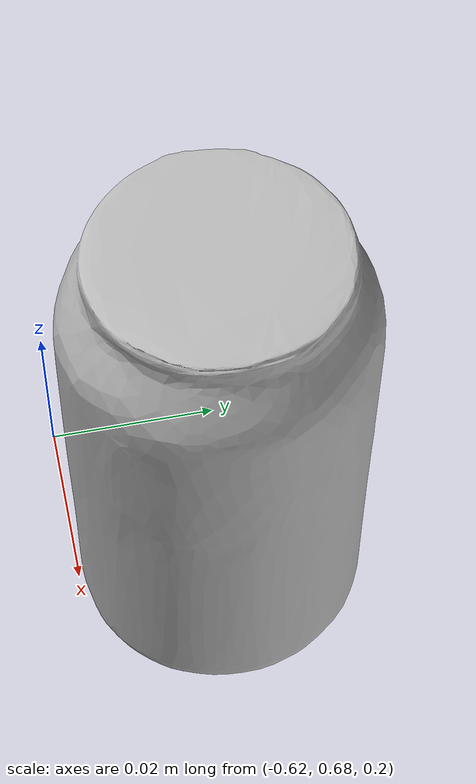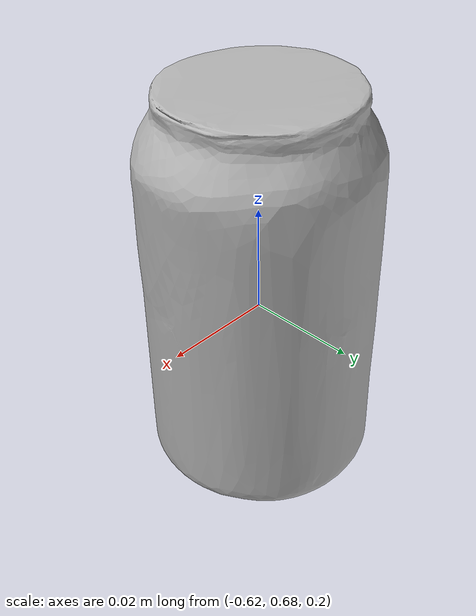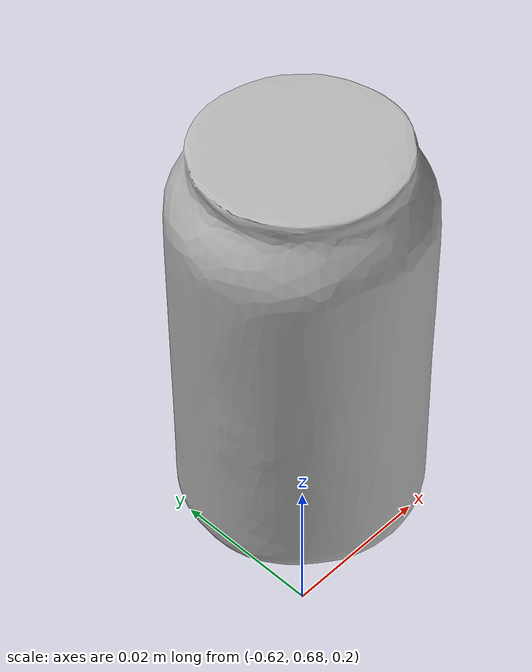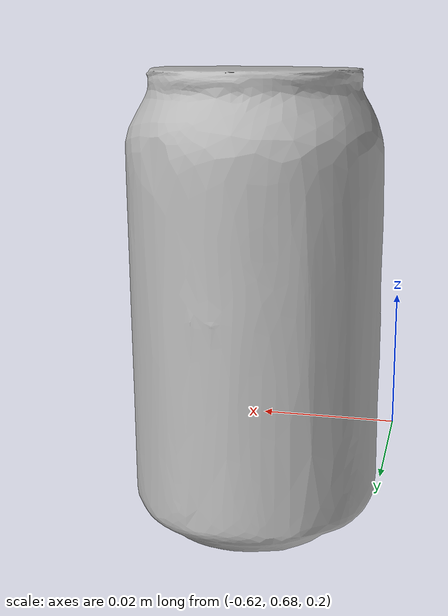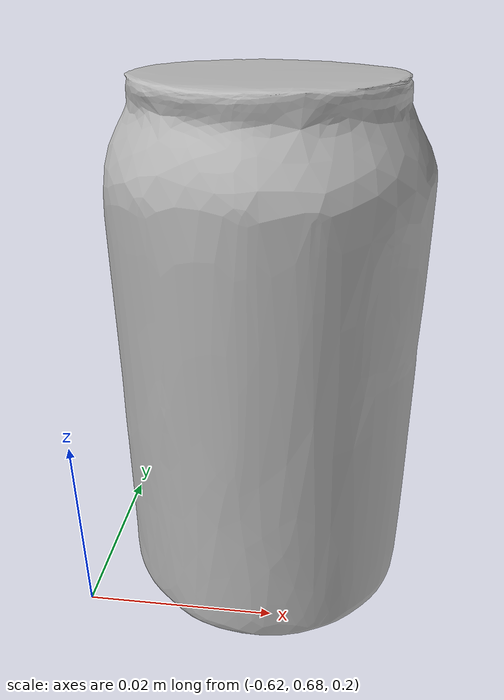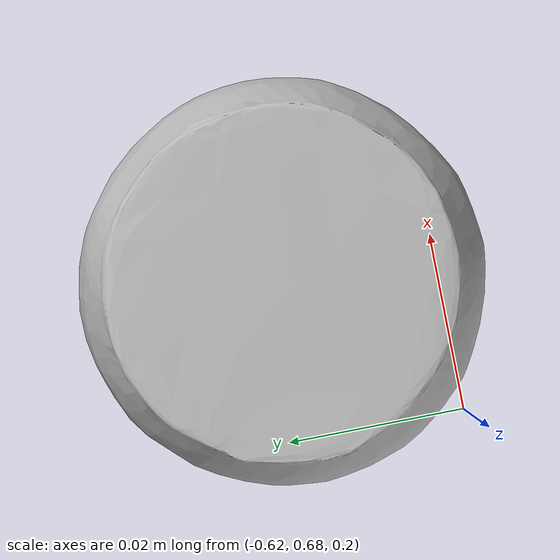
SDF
<?xml version='1.0' ?>
<sdf version='1.4'>
  <world name='empty'>
    <plugin name="ros_link_attacher_plugin" filename="libgazebo_ros_link_attacher.so"/>
    <include>
      <uri>model://sun</uri>
    </include>

    <!-- A ground plane -->

    <!-- Physics settings for simulation -->
    <physics type='ode'>
      <max_step_size>0.001</max_step_size>
      <real_time_factor>1</real_time_factor>
      <real_time_update_rate>1000</real_time_update_rate>
      <gravity>0 0 -9.81</gravity>
    </physics>

    <model name='coke_can_box_model'>
          <pose frame=''>-0.6 0.7 0.1 0 0 0</pose>
          <link name='coke_can'>
            <inertial>
              <mass>0.01</mass>
              <inertia>
                <ixx>0.00016</ixx>
                <ixy>0</ixy>
                <ixz>0</ixz>
                <iyy>0.00016</iyy>
                <iyz>0</iyz>
                <izz>0.00006</izz>
              </inertia>
            </inertial>
            <collision name='collision'>

                <geometry>
                    <mesh>
                        <uri>model://coke_can/meshes/coke_can.dae</uri>
                        <scale>0.5 0.5 0.5</scale>
                    </mesh>
                </geometry>
              <max_contacts>10</max_contacts>
              <surface>
                       <friction>
                         <ode>
                           <mu>100.0</mu>
                           <mu2>100.0</mu2>
                         </ode>
                       </friction>
             <bounce>
                 <restitution_coefficient>0.5</restitution_coefficient>
                 <threshold>0.01</threshold>
                     </bounce>
                       <contact>
                         <ode>
                           <kp>10000000.0</kp>
                           <kd>1.0</kd>
                           <soft_cfm>0.8</soft_cfm>
                           <soft_erp>0.8</soft_erp>
                           <min_depth>0.001</min_depth>
                           <max_vel>0.1</max_vel>
                         </ode>
                       </contact>
               </surface>
            </collision>
            <visual name='visual'>
                <geometry>
                    <mesh>
                        <uri>model://coke_can/meshes/coke_can.dae</uri>
                        <scale>0.5 0.5 0.5</scale>
                    </mesh>
                </geometry>
            </visual>
            <self_collide>0</self_collide>
            <kinematic>0</kinematic>
          </link>
        </model>

   <model name='table_box_model'>
      <static>true</static>
      <pose frame=''>0 0 -0.05 0 -0 0</pose>
      <link name='table_box_link'>
        <inertial>
          <mass>1</mass>
          <inertia>
            <ixx>0.166667</ixx>
            <ixy>0</ixy>
            <ixz>0</ixz>
            <iyy>0.166667</iyy>
            <iyz>0</iyz>
            <izz>0.166667</izz>
          </inertia>
        </inertial>
        <collision name='collision'>
          <geometry>
            <box>
              <size>2 2 0.0001</size>
            </box>
          </geometry>
          <max_contacts>10</max_contacts>
          <surface>
       <friction>
   <ode>
     <mu>100.0</mu>
     <mu2>100.0</mu2>
   </ode>
       </friction>
       <bounce/>
       <contact>
   <ode>
     <kp>10000000.0</kp>
     <kd>1.0</kd>
     <min_depth>0.001</min_depth>
     <max_vel>0.1</max_vel>
   </ode>
       </contact>
           </surface>
        </collision>
        <visual name='visual'>
          <geometry>
            <box>
              <size>2 2 0.0001</size>
            </box>
          </geometry>
          <material>
            <script>
              <name>Gazebo/Grey</name>
              <uri>file://media/materials/scripts/gazebo.material</uri>
            </script>
          </material>
        </visual>
        <self_collide>0</self_collide>
        <kinematic>0</kinematic>
      </link>
    </model>

  </world>
</sdf>
